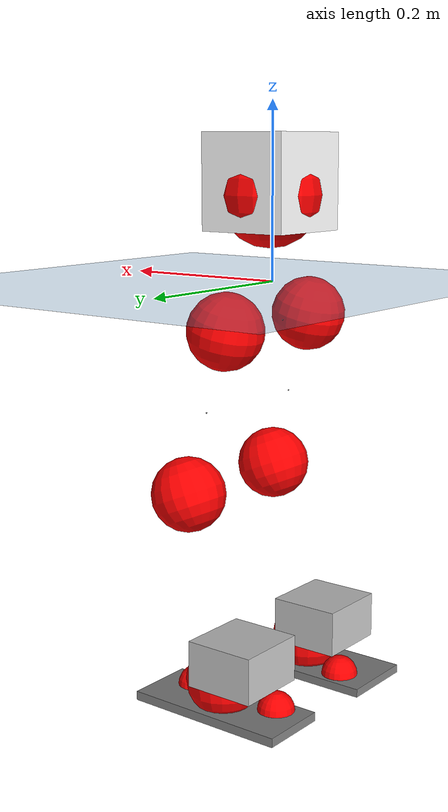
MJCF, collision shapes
<mujoco model="pi_12dof_release_v1">
  <compiler angle="radian" assetdir="assets" balanceinertia="true" inertiafromgeom="false"/>

  <option timestep="0.005" density="1.2" viscosity="2e-05"/>

  <size nkey="1"/>

  <visual>
    <quality shadowsize="8192"/>
    <map shadowclip="0.5"/>
  </visual>

  <default>
    <default class="/">
      <joint armature="0.01" damping="0.01" frictionloss="0.01"/>
      <geom contype="0" conaffinity="0" group="1" solref="-1000 -80"/>
      <site size="0.01 0.005 0.005" group="5"/>
      <general forcelimited="true" biastype="affine" gainprm="20" biasprm="0 -20 -0.5"/>
      <default class="foot">
        <geom size="0.0845 0.036 0.005" type="box" condim="6" group="4" priority="1" friction="0.9 0.2 0.2" solimp="0.015 1 0.005"/>
      </default>
      <default class="reward_collision_sphere">
        <geom group="5" rgba="1 0 0 1"/>
      </default>
    </default>
  </default>

  <asset>
    <texture type="skybox" colorspace="auto" name="//unnamed_texture_0" builtin="gradient" rgb1="0.95 0.95 0.95" rgb2="0.95 0.95 0.95" width="100" height="600"/>
    <texture type="2d" colorspace="auto" name="texplane" builtin="checker" rgb1="0.345 0.575 0.748" rgb2="0.345 0.575 0.748" markrgb="1 1 1" width="512" height="512"/>
    <material name="MatPlane" class="/" texture="texplane" texuniform="true" texrepeat="2 2" specular="0.9"/>
    <mesh name="baselink_1" class="/" file="baselink_1.STL"/>
    <mesh name="r_hip_pitch_link" class="/" file="r_hip_pitch_link.STL"/>
    <mesh name="r_hip_roll_link" class="/" file="r_hip_roll_link.STL"/>
    <mesh name="r_thigh_link" class="/" file="r_thigh_link.STL"/>
    <mesh name="r_calf_link" class="/" file="r_calf_link.STL"/>
    <mesh name="r_ankle_pitch_link" class="/" file="r_ankle_pitch_link.STL"/>
    <mesh name="r_ankle_roll_link" class="/" file="r_ankle_roll_link.STL"/>
    <mesh name="l_hip_pitch_link" class="/" file="l_hip_pitch_link.STL"/>
    <mesh name="l_hip_roll_link" class="/" file="l_hip_roll_link.STL"/>
    <mesh name="l_thigh_link" class="/" file="l_thigh_link.STL"/>
    <mesh name="l_calf_link" class="/" file="l_calf_link.STL"/>
    <mesh name="l_ankle_pitch_link" class="/" file="l_ankle_pitch_link.STL"/>
    <mesh name="l_ankle_roll_link" class="/" file="l_ankle_roll_link.STL"/>
  </asset>

  <worldbody>
    <geom name="floor" class="/" size="100 100 0.125" type="plane" group="0" material="MatPlane"/>
    <light name="toplight_shadow" class="/" pos="0 0 5" dir="0.0990148 0.0990148 -0.990148" type="directional" ambient="0.04 0.04 0.04" diffuse="0.55 0.55 0.55" specular="0.12 0.12 0.12"/>
    <light name="toplight_fill" class="/" pos="0 0 5" dir="0.0990148 0.0990148 -0.990148" type="directional" castshadow="false" ambient="0.04 0.04 0.04" diffuse="0.3 0.3 0.3" specular="0.08 0.08 0.08"/>
    <body name="trunk" pos="0.00318612 -0.00025245 -0.00240098" quat="1 5.20581e-05 -0.000366811 -0.000298636">
      <inertial pos="0.00589273 -0.00371806 0.0573622" quat="0.693353 0.020819 0.0136167 0.720169" mass="2.85323" diaginertia="0.00465539 0.00765292 0.0234276"/>
      <joint name="//unnamed_joint_0" type="free"/>
      <geom name="//unnamed_geom_1" class="/" type="mesh" density="0" rgba="1 1 1 1" mesh="baselink_1"/>
      <geom name="//unnamed_geom_2" class="/" size="0.0541189 0.0541189 0.0541189" pos="0 0 0.113356" type="box" rgba="1 1 1 1"/>
      <geom name="//unnamed_geom_3" class="reward_collision_sphere" size="0.0595308" pos="0 0 0.0991866"/>
      <site name="imu" class="/" pos="-0.0021132 0.0124519 -0.0128518" size="0.0108238"/>
      <camera name="track" class="/" pos="0 -1.9282 0" quat="0.707107 0.707107 0 0" mode="trackcom"/>
      <camera name="ego_camera" class="/" pos="0.064956 0 0.255051" quat="-0.5 -0.5 0.5 0.5"/>
      <body name="r_hip_pitch_link" pos="-0.000909477 -0.0233594 -0.0440797" quat="0.992128 -0.00146507 -0.125223 9.38443e-06">
        <inertial pos="0.00484162 -0.0551929 -0.00201176" quat="-0.0199469 0.706247 -0.0278058 0.707138" mass="0.449476" diaginertia="5.04597e-05 8.25068e-05 0.00047297"/>
        <joint name="r_hip_pitch_joint" class="/" pos="0 0 0" axis="0.000574568 -0.999998 0.0018233" stiffness="0.0205752" range="-1.74724 1.30102" armature="0.01105" damping="0.0204992" frictionloss="0.0108908"/>
        <geom name="//unnamed_geom_4" class="/" type="mesh" density="0" rgba="0.75294 0.75294 0.75294 1" mesh="r_hip_pitch_link"/>
        <geom name="//unnamed_geom_5" class="/" size="0.000541189 0.000541189 0.000541189" type="box" rgba="0.75294 0.75294 0.75294 1"/>
        <body name="r_hip_roll_link" pos="0.000164333 -0.0508666 0.00261236" quat="1 4.28004e-07 -2.74661e-06 1.26252e-06">
          <inertial pos="-0.00479947 0.000935858 -0.0882281" quat="0.706413 -0.0773032 -0.0845991 0.698461" mass="0.472163" diaginertia="0.000159187 0.000236623 0.000704045"/>
          <joint name="r_hip_roll_joint" class="/" pos="0 0 0" axis="-0.999997 0.000656289 0.00237431" range="-0.0976941 0.532484" armature="0.0121316" damping="0.0100078" frictionloss="0.010673"/>
          <geom name="//unnamed_geom_6" class="/" type="mesh" density="0" rgba="0.75294 0.75294 0.75294 1" mesh="r_hip_roll_link"/>
          <geom name="//unnamed_geom_7" class="/" size="0.000541189 0.000541189 0.000541189" type="box" rgba="0.75294 0.75294 0.75294 1"/>
          <geom name="//unnamed_geom_8" class="reward_collision_sphere" size="0.0432951"/>
          <body name="r_thigh_link" pos="0.00161723 0.00315872 -0.0988824" quat="1 -0.000278579 8.27181e-05 -7.27629e-05">
            <inertial pos="0.00125439 0.00274719 -0.0671053" quat="0.735319 0.677662 0.000204757 0.00897926" mass="0.147241" diaginertia="5.88228e-05 8.04582e-05 0.000327706"/>
            <joint name="r_thigh_joint" class="/" pos="0 0 0" axis="0.00371734 0.00088427 -0.999993" stiffness="0.0199464" range="-0.306488 0.610159" armature="0.0117138" damping="0.0184723" frictionloss="0.0106465"/>
            <geom name="//unnamed_geom_9" class="/" type="mesh" density="0" rgba="0.75294 0.75294 0.75294 1" mesh="r_thigh_link"/>
            <geom name="//unnamed_geom_10" class="/" size="0.000541189 0.000541189 0.000541189" type="box" rgba="0.75294 0.75294 0.75294 1"/>
            <body name="r_calf_link" pos="0.0016353 -0.00447289 -0.0979278" quat="0.947491 0.000879225 0.31978 0.000325349">
              <inertial pos="-0.000967806 0.00180685 -0.0986895" quat="0.999985 -0.00308816 0.000175109 0.00447488" mass="0.970653" diaginertia="0.00168177 0.00283867 0.000989928"/>
              <joint name="r_calf_joint" class="/" pos="0 0 0" axis="9.40398e-05 -1 0.000153221" range="-1.6554 0.681892" armature="0.00835619" damping="0.0213215" frictionloss="0.00863574"/>
              <geom name="//unnamed_geom_11" class="/" type="mesh" density="0" rgba="0.75294 0.75294 0.75294 1" mesh="r_calf_link"/>
              <geom name="//unnamed_geom_12" class="/" size="0.000541189 0.000541189 0.000541189" type="box" rgba="0.75294 0.75294 0.75294 1"/>
              <geom name="//unnamed_geom_13" class="reward_collision_sphere" size="0.0432951"/>
              <body name="r_ankle_pitch_link" pos="0.0023982 -0.00210612 -0.20038" quat="0.980018 0.00051832 -0.198902 -0.00129515">
                <inertial pos="0.00405386 0.00733478 -0.00276733" quat="-0.00539371 0.705738 -0.00557374 0.708431" mass="0.227268" diaginertia="0.000143671 0.000174052 0.000670147"/>
                <joint name="r_ankle_pitch_joint" class="/" pos="0 0 0" axis="0.0170509 -0.999818 -0.00854104" stiffness="0.016219" range="-1.2792 0.490334" armature="0.00980526" damping="0.00721924" frictionloss="0.0105851"/>
                <geom name="//unnamed_geom_14" class="/" type="mesh" density="0" rgba="0.75294 0.75294 0.75294 1" mesh="r_ankle_pitch_link"/>
                <geom name="//unnamed_geom_15" class="/" size="0.0422127 0.0432951 0.0270594" type="box" rgba="0.75294 0.75294 0.75294 1"/>
                <body name="r_ankle_roll_link" pos="0.0656497 0.00167241 0.00026811" quat="1 -2.83064e-05 2.27568e-05 -8.61908e-05">
                  <inertial pos="-0.0188732 8.219e-05 -0.0230629" quat="0.564035 0.430579 0.437585 0.552255" mass="0.669293" diaginertia="0.000533629 0.000846753 0.00159565"/>
                  <joint name="r_ankle_roll_joint" class="/" pos="0 0 0" axis="-0.99968 0.015344 -0.020128" stiffness="0.00116042" range="-0.168537 0.176292" armature="0.0120532" damping="0.004507" frictionloss="0.0104221"/>
                  <geom name="//unnamed_geom_16" class="/" type="mesh" density="0" rgba="0.75294 0.75294 0.75294 1" mesh="r_ankle_roll_link"/>
                  <geom name="//unnamed_geom_17" class="/" type="mesh" rgba="0.75294 0.75294 0.75294 1" mesh="r_ankle_roll_link"/>
                  <geom name="right_foot" class="foot" size="0.101859 0.0452284 0.0049303" pos="-0.0441701 0 -0.0623458"/>
                  <geom name="//unnamed_geom_19" class="reward_collision_sphere" size="0.0432951" pos="-0.043304 0 -0.028339"/>
                  <geom name="//unnamed_geom_20" class="reward_collision_sphere" size="0.0216475" pos="0.0129912 0.019282 -0.056678"/>
                  <geom name="//unnamed_geom_21" class="reward_collision_sphere" size="0.0216475" pos="-0.10393 0.019282 -0.056678"/>
                  <site name="right_foot" class="foot" pos="-0.0441701 0 -0.0623458" size="0.0108238"/>
                </body>
              </body>
            </body>
          </body>
        </body>
      </body>
      <body name="l_hip_pitch_link" pos="-0.00271577 0.0250953 -0.0458052" quat="0.992019 0.00182471 -0.126068 0.000964404">
        <inertial pos="-0.00245565 0.0493182 6.47036e-07" quat="-0.0383696 0.705775 0.0306639 0.706731" mass="0.509893" diaginertia="6.24862e-05 8.75776e-05 0.000557822"/>
        <joint name="l_hip_pitch_joint" class="/" pos="0 0 0" axis="0.00967531 0.999936 -0.00586034" range="-1.22112 1.7438" armature="0.0106012" damping="0.00907107" frictionloss="0.0120566"/>
        <geom name="//unnamed_geom_22" class="/" type="mesh" density="0" rgba="0.75294 0.75294 0.75294 1" mesh="l_hip_pitch_link"/>
        <geom name="//unnamed_geom_23" class="/" size="0.000541189 0.000541189 0.000541189" type="box" rgba="0.75294 0.75294 0.75294 1"/>
        <body name="l_hip_roll_link" pos="0.0025312 0.0561946 -0.000385685" quat="0.999999 -0.00118898 0.000437002 0.000527727">
          <inertial pos="-0.0021955 -0.00133534 -0.088879" quat="0.700203 -0.0703167 -0.070584 0.706957" mass="0.502153" diaginertia="0.000168123 0.00023375 0.000759783"/>
          <joint name="l_hip_roll_joint" class="/" pos="0 0 0" axis="-0.999956 -0.00179484 0.00921471" range="-0.552914 0.067116" armature="0.0105634" damping="0.0280326" frictionloss="0.0118361"/>
          <geom name="//unnamed_geom_24" class="/" type="mesh" density="0" rgba="0.75294 0.75294 0.75294 1" mesh="l_hip_roll_link"/>
          <geom name="//unnamed_geom_25" class="/" size="0.000541189 0.000541189 0.000541189" type="box" rgba="0.75294 0.75294 0.75294 1"/>
          <geom name="//unnamed_geom_26" class="reward_collision_sphere" size="0.0432951"/>
          <body name="l_thigh_link" pos="0.0018367 0.00191072 -0.0966467" quat="1 0.000111702 -5.97715e-05 -5.43965e-05">
            <inertial pos="0.000467892 -0.0018983 -0.0659947" quat="0.675349 0.737498 -0.000146872 -0.000131831" mass="0.142647" diaginertia="6.0785e-05 7.77937e-05 0.00032607"/>
            <joint name="l_thigh_joint" class="/" pos="0 0 0" axis="-0.000714626 -0.0110962 -0.999938" range="-0.596576 0.258537" armature="0.00991439" damping="0.00598552" frictionloss="0.00990358"/>
            <geom name="//unnamed_geom_27" class="/" type="mesh" density="0" rgba="0.75294 0.75294 0.75294 1" mesh="l_thigh_link"/>
            <geom name="//unnamed_geom_28" class="/" size="0.000541189 0.000541189 0.000541189" type="box" rgba="0.75294 0.75294 0.75294 1"/>
            <body name="l_calf_link" pos="5.70998e-05 0.00246634 -0.10066" quat="0.947651 3.13534e-05 0.319307 -2.37177e-05">
              <inertial pos="0.000188853 0.00289016 -0.0996287" quat="0.999904 0.010924 -0.00819293 0.00243622" mass="1.04446" diaginertia="0.00175819 0.00297145 0.000975528"/>
              <joint name="l_calf_joint" class="/" pos="0 0 0" axis="0.0102483 0.999947 5.56106e-05" range="-0.692866 1.68754" armature="0.0127181" damping="0.00513284" frictionloss="0.00900355"/>
              <geom name="//unnamed_geom_29" class="/" type="mesh" density="0" rgba="0.75294 0.75294 0.75294 1" mesh="l_calf_link"/>
              <geom name="//unnamed_geom_30" class="/" size="0.000541189 0.000541189 0.000541189" type="box" rgba="0.75294 0.75294 0.75294 1"/>
              <geom name="//unnamed_geom_31" class="reward_collision_sphere" size="0.0432951"/>
              <body name="l_ankle_pitch_link" pos="-0.000234862 0.000494769 -0.197437" quat="0.979917 -0.000299785 -0.199406 -0.000725566">
                <inertial pos="0.00357173 -0.00267849 -0.000296043" quat="-0.000146532 0.705491 0.00433668 0.708705" mass="0.210929" diaginertia="0.000141129 0.000180906 0.000682138"/>
                <joint name="l_ankle_pitch_joint" class="/" pos="0 0 0" axis="0.00309339 0.99994 -0.0104866" range="-0.556705 1.31124" armature="0.010806" damping="0.00823882" frictionloss="0.012041"/>
                <geom name="//unnamed_geom_32" class="/" type="mesh" density="0" rgba="0.75294 0.75294 0.75294 1" mesh="l_ankle_pitch_link"/>
                <geom name="//unnamed_geom_33" class="/" size="0.0422127 0.0432951 0.0270594" type="box" rgba="0.75294 0.75294 0.75294 1"/>
                <body name="l_ankle_roll_link" pos="0.0702364 -0.000759327 -0.000108411" quat="0.999999 0.00100689 -0.000614616 -0.000296572">
                  <inertial pos="-0.025016 0.00060363 -0.0189478" quat="0.552666 0.427161 0.435453 0.567869" mass="0.652357" diaginertia="0.000586551 0.000896797 0.00170101"/>
                  <joint name="l_ankle_roll_joint" class="/" pos="0 0 0" axis="-0.999992 0.0020212 -0.00344679" range="-0.208063 0.159267" armature="0.0110689" damping="0.0165476" frictionloss="0.0121925"/>
                  <geom name="//unnamed_geom_34" class="/" type="mesh" density="0" rgba="0.75294 0.75294 0.75294 1" mesh="l_ankle_roll_link"/>
                  <geom name="//unnamed_geom_35" class="/" type="mesh" rgba="0.75294 0.75294 0.75294 1" mesh="l_ankle_roll_link"/>
                  <geom name="left_foot" class="foot" size="0.0983014 0.0408728 0.00530913" pos="-0.0441701 0 -0.0623458"/>
                  <geom name="//unnamed_geom_37" class="reward_collision_sphere" size="0.0432951" pos="-0.043304 0 -0.028339"/>
                  <geom name="//unnamed_geom_38" class="reward_collision_sphere" size="0.0216475" pos="0.0129912 -0.019282 -0.056678"/>
                  <geom name="//unnamed_geom_39" class="reward_collision_sphere" size="0.0216475" pos="-0.10393 -0.019282 -0.056678"/>
                  <site name="left_foot" class="foot" pos="-0.0441701 0 -0.0623458" size="0.0108238"/>
                </body>
              </body>
            </body>
          </body>
        </body>
      </body>
    </body>
  </worldbody>

  <contact>
    <pair class="/" geom1="floor" geom2="right_foot" name="//unnamed_contact_1"/>
    <pair class="/" geom1="floor" geom2="left_foot" name="//unnamed_contact_0"/>
  </contact>

  <actuator>
    <general name="r_hip_pitch_joint" class="/" joint="r_hip_pitch_joint" forcerange="-20.7958 20.7958" gainprm="22.6754" biasprm="0 -22.6754 -0.520767"/>
    <general name="r_hip_roll_joint" class="/" joint="r_hip_roll_joint" forcerange="-22.6505 22.6505" gainprm="22.6754" biasprm="0 -22.6754 -0.520767"/>
    <general name="r_thigh_joint" class="/" joint="r_thigh_joint" forcerange="-23.2175 23.2175" gainprm="22.6754" biasprm="0 -22.6754 -0.520767"/>
    <general name="r_calf_joint" class="/" joint="r_calf_joint" forcerange="-20.8664 20.8664" gainprm="22.6754" biasprm="0 -22.6754 -0.520767"/>
    <general name="r_ankle_pitch_joint" class="/" joint="r_ankle_pitch_joint" forcerange="-24.6689 24.6689" gainprm="22.6754" biasprm="0 -22.6754 -0.520767"/>
    <general name="r_ankle_roll_joint" class="/" joint="r_ankle_roll_joint" forcerange="-20.7807 20.7807" gainprm="22.6754" biasprm="0 -22.6754 -0.520767"/>
    <general name="l_hip_pitch_joint" class="/" joint="l_hip_pitch_joint" forcerange="-22.6258 22.6258" gainprm="22.6754" biasprm="0 -22.6754 -0.520767"/>
    <general name="l_hip_roll_joint" class="/" joint="l_hip_roll_joint" forcerange="-21.3005 21.3005" gainprm="22.6754" biasprm="0 -22.6754 -0.520767"/>
    <general name="l_thigh_joint" class="/" joint="l_thigh_joint" forcerange="-22.6817 22.6817" gainprm="22.6754" biasprm="0 -22.6754 -0.520767"/>
    <general name="l_calf_joint" class="/" joint="l_calf_joint" forcerange="-19.2224 19.2224" gainprm="22.6754" biasprm="0 -22.6754 -0.520767"/>
    <general name="l_ankle_pitch_joint" class="/" joint="l_ankle_pitch_joint" forcerange="-22.4138 22.4138" gainprm="22.6754" biasprm="0 -22.6754 -0.520767"/>
    <general name="l_ankle_roll_joint" class="/" joint="l_ankle_roll_joint" forcerange="-22.9198 22.9198" gainprm="22.6754" biasprm="0 -22.6754 -0.520767"/>
  </actuator>

  <sensor>
    <gyro site="imu" name="imu_angular_velocity"/>
    <velocimeter site="imu" name="imu_linear_velocity"/>
    <framelinvel objtype="site" objname="left_foot" name="left_foot_global_linear_velocity"/>
    <framelinvel objtype="site" objname="right_foot" name="right_foot_global_linear_velocity"/>
  </sensor>

  <keyframe>
    <key name="home" qpos="0 0 0.291 1 0 0 0 0.4 0 0 -0.8 0.4 0 -0.4 0 0 0.8 -0.4 0"/>
  </keyframe>
</mujoco>
